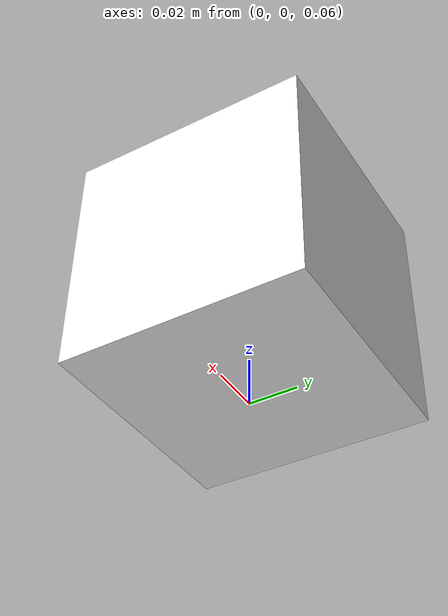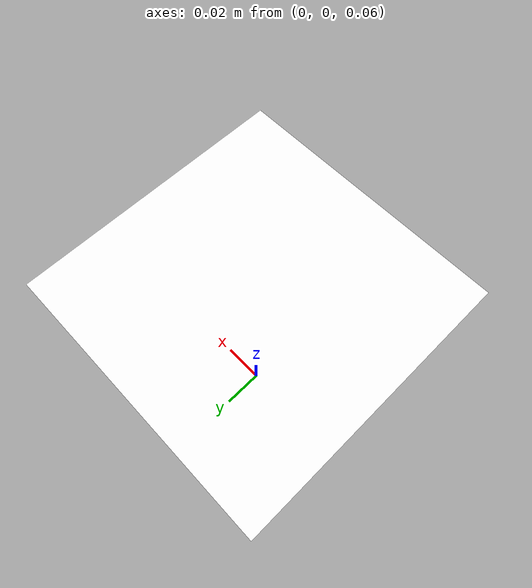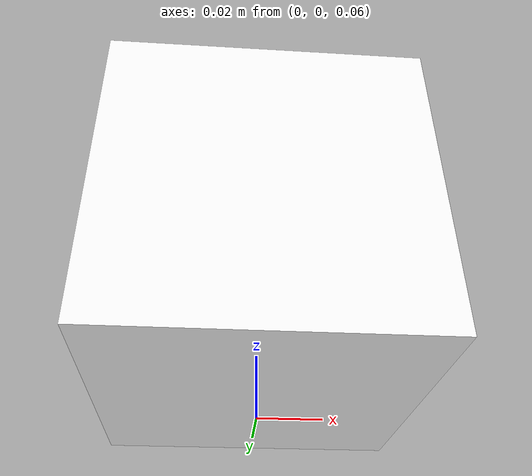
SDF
<?xml version='1.0'?>
<sdf version='1.6'>
  <model name='ARBlock10'>
    <link name='link'>
      <pose frame=''>0 -0 0.115 0 -0 0</pose>
      <inertial>
        <mass>0.00522541</mass>
        <inertia>
          <ixx>7.481e-05</ixx>
          <ixy>0</ixy>
          <ixz>0</ixz>
          <iyy>7.435e-05</iyy>
          <iyz>0</iyz>
          <izz>8.187e-05</izz>
        </inertia>
        <pose frame=''>0 0 0 0 -0 0</pose>
      </inertial>
      <self_collide>0</self_collide>
      <kinematic>0</kinematic>
      <visual name='visual'>
        <geometry>
          <box>
            <size>0.1 0.1 0.1</size>
          </box>
        </geometry>
        <material>
          <script>
            <uri>model://ARBlock10/materials/scripts</uri>
            <uri>model://ARBlock10/materials/textures</uri>
            <name>ARBlock10/Use</name>
          </script>
          <shader type='pixel'>
            <normal_map>__default__</normal_map>
          </shader>
          <ambient>1 1 1 1</ambient>
          <diffuse>1 1 1 1</diffuse>
          <specular>0 0 0 1</specular>
          <emissive>0 0 0 1</emissive>
        </material>
        <pose frame=''>0 0 0 0 -0 0</pose>
        <transparency>0</transparency>
        <cast_shadows>1</cast_shadows>
      </visual>
      <collision name='collision'>
        <laser_retro>0</laser_retro>
        <max_contacts>10</max_contacts>
        <pose frame=''>0 0 0 0 -0 0</pose>
        <geometry>
          <box>
            <size>0.1 0.1 0.1</size>
          </box>
        </geometry>
        <surface>
          <friction>
            <ode>
              <mu>1</mu>
              <mu2>1</mu2>
              <fdir1>0 0 0</fdir1>
              <slip1>0</slip1>
              <slip2>0</slip2>
            </ode>
            <torsional>
              <coefficient>1</coefficient>
              <patch_radius>0</patch_radius>
              <surface_radius>0</surface_radius>
              <use_patch_radius>1</use_patch_radius>
              <ode>
                <slip>0</slip>
              </ode>
            </torsional>
          </friction>
          <bounce>
            <restitution_coefficient>0</restitution_coefficient>
            <threshold>1e+06</threshold>
          </bounce>
          <contact>
            <collide_without_contact>0</collide_without_contact>
            <collide_without_contact_bitmask>1</collide_without_contact_bitmask>
            <collide_bitmask>1</collide_bitmask>
            <ode>
              <soft_cfm>0</soft_cfm>
              <soft_erp>0.2</soft_erp>
              <kp>1e+13</kp>
              <kd>1</kd>
              <max_vel>0.01</max_vel>
              <min_depth>0</min_depth>
            </ode>
            <bullet>
              <split_impulse>1</split_impulse>
              <split_impulse_penetration_threshold>-0.01</split_impulse_penetration_threshold>
              <soft_cfm>0</soft_cfm>
              <soft_erp>0.2</soft_erp>
              <kp>1e+13</kp>
              <kd>1</kd>
            </bullet>
          </contact>
        </surface>
      </collision>
    </link>
    <static>0</static>
    <allow_auto_disable>1</allow_auto_disable>
  </model>
</sdf>
